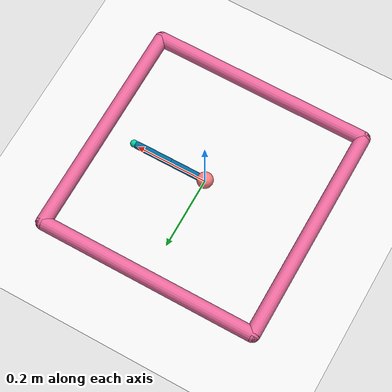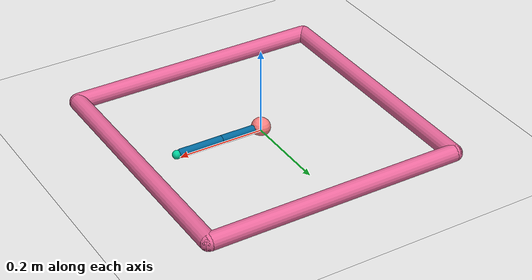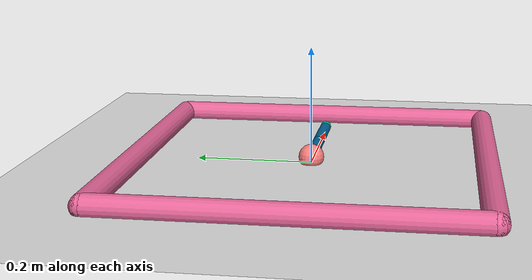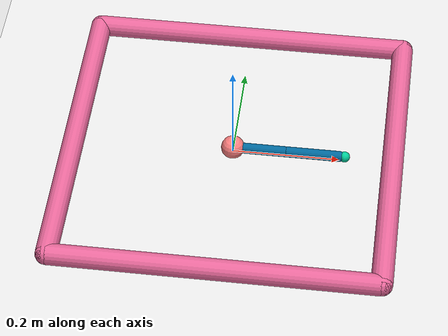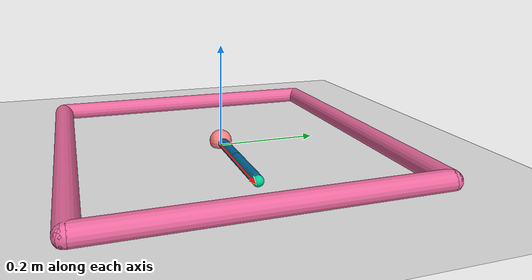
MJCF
<mujoco model="reacher">
	<compiler angle="degree" inertiafromgeom="true"/>
	<default>
		<joint armature="1" damping="1" limited="true"/>
		<geom contype="0" friction="1 0.1 0.1" rgba="0.7 0.7 0 1"/>
	</default>
	<option gravity="0 0 -9.81" integrator="RK4" timestep="0.01"/>

	<worldbody>
		<!-- Arena -->
		<geom name="ground" pos="0 0 0" rgba="0.9 0.9 0.9 1" size="1 1 10" type="plane" contype="1" conaffinity="1"/>
		<geom fromto="-.3 -.3 .01 .3 -.3 .01" name="sideS" rgba="0.9 0.4 0.6 1" size=".02" type="capsule" contype="1" conaffinity="1" />
		<geom fromto=" .3 -.3 .01 .3  .3 .01" name="sideE" rgba="0.9 0.4 0.6 1" size=".02" type="capsule" contype="1" conaffinity="1" />
		<geom fromto="-.3  .3 .01 .3  .3 .01" name="sideN" rgba="0.9 0.4 0.6 1" size=".02" type="capsule" contype="1" conaffinity="1" />
		<geom fromto="-.3 -.3 .01 -.3 .3 .01" name="sideW" rgba="0.9 0.4 0.6 1" size=".02" type="capsule" contype="1" conaffinity="1" />
		<!-- Arm -->
		<geom conaffinity="0" contype="0" fromto="0 0 0 0 0 0.02" name="root" rgba="0.9 0.4 0.6 1" size=".011" type="cylinder"/>
		<body name="body0" pos="0 0 .01">
			<geom fromto="0 0 0 0.1 0 0" name="link0" rgba="0.0 0.4 0.6 1" size=".01" type="capsule"/>
			<joint axis="0 0 1" limited="false" name="joint0" pos="0 0 0" type="hinge"/>
			<body name="body1" pos="0.1 0 0">
				<joint axis="0 0 1" limited="true" name="joint1" pos="0 0 0" range="-150 150" type="hinge"/>
				<geom fromto="0 0 0 0.1 0 0" name="link1" rgba="0.0 0.4 0.6 1" size=".01" type="capsule"/>
				<body name="fingertip" pos="0.11 0 0">
					<geom name="fingertip" pos="0 0 0" rgba="0.0 0.8 0.6 1" size=".01" type="sphere" />
				</body>
			</body>
		</body>
		<!-- Target -->
		<body name="target" pos="0 0 .01">
			<joint armature="0" axis="1 0 0" damping="0" limited="false" name="target_x" pos="0 0 0" stiffness="0" type="slide"/>
			<joint armature="0" axis="0 1 0" damping="0" limited="false" name="target_y" pos="0 0 0" stiffness="0" type="slide"/>
			<geom name="target" pos="0 0 0" rgba="0.9 0.2 0.2 1" size=".009" type="sphere" conaffinity="0" contype="0"/>
		</body>
	    <!-- distractor -->
	    <body name="distractor" pos="0 0 .01" >
	      <joint name="distractor_x" type="slide" axis="1 0 0" limited="false" />
	      <joint name="distractor_y" type="slide" axis="0 1 0" limited="false" />
	      <geom  name="distractor" pos="0 0 0" rgba="1. 0.5 0.5 1" size=".022" type="sphere" contype="0" conaffinity="1" />
	      <site  name="distractor" type="sphere"/>
	    </body>
	</worldbody>
	<actuator>
		<motor ctrllimited="true" ctrlrange="-1.0 1.0" gear="200.0" joint="joint0"/>
		<motor ctrllimited="true" ctrlrange="-1.0 1.0" gear="200.0" joint="joint1"/>
	</actuator>
</mujoco>
